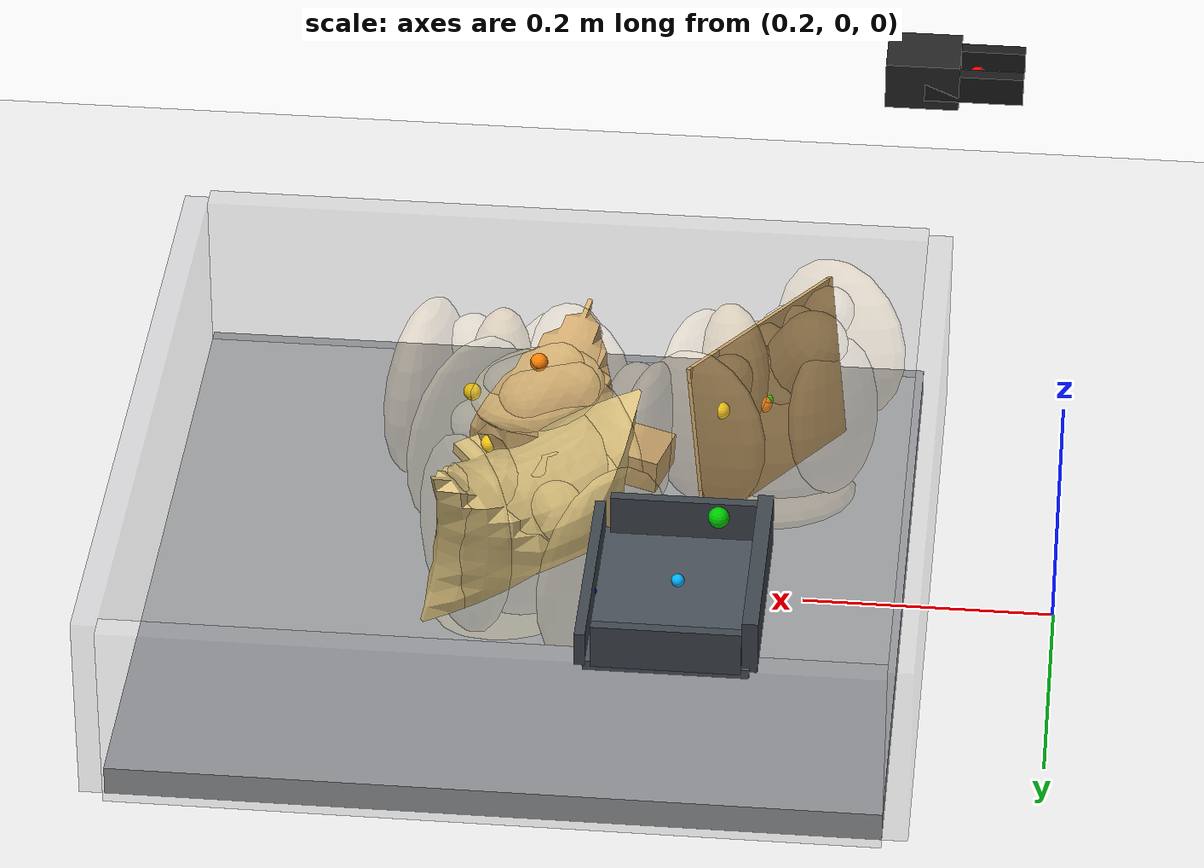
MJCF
<mujoco model="underfilled_slack_seed10">
  <compiler angle="radian" coordinate="local" inertiafromgeom="true" meshdir="D:/Michael/2025/01.Research/01.Parceldetection/16.Pybullet/bullet3-master (1)/bullet3-master/examples/pybullet/examples/DeformableTest/Sackcodex2/object"/>
  <option timestep="0.002" gravity="0 0 -9.81" integrator="implicitfast" iterations="100" tolerance="1e-8"/>
  <size memory="768M" nconmax="12000"/>

  <visual>
    <global azimuth="128" elevation="-20" offwidth="1280" offheight="720"/>
    <headlight ambient="0.34 0.34 0.34" diffuse="0.78 0.78 0.78" specular="0.15 0.15 0.15"/>
    <rgba haze="0.11 0.13 0.18 1"/>
  </visual>

  <default>
    <geom condim="4" friction="1.15 0.03 0.01" margin="0.003" solimp="0.93 0.98 0.003" solref="0.012 1"/>
    <joint damping="1.2" armature="0.002"/>
    <position kp="2500" forcelimited="true" forcerange="-420 420"/>
    <motor ctrllimited="true"/>
  </default>

  <asset>
    <mesh name="sack_0_visual_mesh" file="sack10.obj" scale="0.0687 0.0687 0.0685"/>
    <mesh name="sack_1_visual_mesh" file="sack9.obj" scale="0.0726 0.0726 0.0787"/>
    <mesh name="sack_2_visual_mesh" file="sack2.obj" scale="0.0679 0.0679 0.0690"/>
  </asset>

  <worldbody>
    <light name="key" pos="0.85 0.15 1.8" dir="-0.2 -0.1 -1" directional="true"/>
    <geom name="floor" type="plane" size="2 2 0.1" rgba="0.93 0.93 0.93 1"/>
    <geom name="work_pad" type="box" pos="0.62 0 0.012" size="0.30 0.30 0.012" rgba="0.60 0.61 0.62 1" friction="1.4 0.05 0.01"/>
    <geom name="corral_front" type="box" pos="0.93 0.00 0.08" size="0.010 0.30 0.08" rgba="0.55 0.55 0.58 0.22" friction="1.0 0.03 0.01"/>
    <geom name="corral_back" type="box" pos="0.31 0.00 0.08" size="0.010 0.30 0.08" rgba="0.55 0.55 0.58 0.18" friction="1.0 0.03 0.01"/>
    <geom name="corral_left" type="box" pos="0.62 0.30 0.08" size="0.30 0.010 0.08" rgba="0.55 0.55 0.58 0.14" friction="1.0 0.03 0.01"/>
    <geom name="corral_right" type="box" pos="0.62 -0.30 0.08" size="0.30 0.010 0.08" rgba="0.55 0.55 0.58 0.14" friction="1.0 0.03 0.01"/>
    <camera name="overview" pos="1.22 0.00 0.92" xyaxes="0 1 0 -0.46 0 0.88"/>

    <body name="gripper_mocap" mocap="true" pos="0.36 -0.33 0.30" quat="0.707107 0 -0.707107 0"/>
    <body name="scoop_mocap" mocap="true" pos="0.42 0.28 0.20" quat="1 0 0 0"/>

    <body name="gripper_ctrl_base" pos="0.36 -0.33 0.30">
      <inertial pos="0 0 0" mass="0.001" diaginertia="1e-6 1e-6 1e-6"/>
      <joint name="gripper_ctrl_x" type="slide" axis="1 0 0" limited="true" range="0.20 1.00"/>
      <body name="gripper_ctrl_y_body">
        <inertial pos="0 0 0" mass="0.001" diaginertia="1e-6 1e-6 1e-6"/>
        <joint name="gripper_ctrl_y" type="slide" axis="0 1 0" limited="true" range="-0.60 0.60"/>
        <body name="gripper_ctrl_z_body">
          <inertial pos="0 0 0" mass="0.001" diaginertia="1e-6 1e-6 1e-6"/>
          <joint name="gripper_ctrl_z" type="slide" axis="0 0 1" limited="true" range="0.04 0.70"/>
          <body name="gripper_ctrl_yaw_body">
            <inertial pos="0 0 0" mass="0.001" diaginertia="1e-6 1e-6 1e-6"/>
            <joint name="gripper_ctrl_yaw" type="hinge" axis="0 0 1" limited="true" range="-3.1416 3.1416"/>
            <body name="gripper_ctrl_pitch_body">
              <inertial pos="0 0 0" mass="0.001" diaginertia="1e-6 1e-6 1e-6"/>
              <joint name="gripper_ctrl_pitch" type="hinge" axis="0 1 0" limited="true" range="-3.1416 3.1416"/>
              <body name="gripper_ctrl_roll_body">
                <inertial pos="0 0 0" mass="0.001" diaginertia="1e-6 1e-6 1e-6"/>
                <joint name="gripper_ctrl_roll" type="hinge" axis="1 0 0" limited="true" range="-3.1416 3.1416"/>
              </body>
            </body>
          </body>
        </body>
      </body>
    </body>

    <body name="scoop_ctrl_base" pos="0.42 0.28 0.20">
      <inertial pos="0 0 0" mass="0.001" diaginertia="1e-6 1e-6 1e-6"/>
      <joint name="scoop_ctrl_x" type="slide" axis="1 0 0" limited="true" range="0.20 1.00"/>
      <body name="scoop_ctrl_y_body">
        <inertial pos="0 0 0" mass="0.001" diaginertia="1e-6 1e-6 1e-6"/>
        <joint name="scoop_ctrl_y" type="slide" axis="0 1 0" limited="true" range="-0.60 0.60"/>
        <body name="scoop_ctrl_z_body">
          <inertial pos="0 0 0" mass="0.001" diaginertia="1e-6 1e-6 1e-6"/>
          <joint name="scoop_ctrl_z" type="slide" axis="0 0 1" limited="true" range="0.04 0.70"/>
          <body name="scoop_ctrl_yaw_body">
            <inertial pos="0 0 0" mass="0.001" diaginertia="1e-6 1e-6 1e-6"/>
            <joint name="scoop_ctrl_yaw" type="hinge" axis="0 0 1" limited="true" range="-3.1416 3.1416"/>
            <body name="scoop_ctrl_pitch_body">
              <inertial pos="0 0 0" mass="0.001" diaginertia="1e-6 1e-6 1e-6"/>
              <joint name="scoop_ctrl_pitch" type="hinge" axis="0 1 0" limited="true" range="-3.1416 3.1416"/>
              <body name="scoop_ctrl_roll_body">
                <inertial pos="0 0 0" mass="0.001" diaginertia="1e-6 1e-6 1e-6"/>
                <joint name="scoop_ctrl_roll" type="hinge" axis="1 0 0" limited="true" range="-3.1416 3.1416"/>
              </body>
            </body>
          </body>
        </body>
      </body>
    </body>

    <body name="gripper_tool" pos="0.36 -0.33 0.30" quat="0.707107 0 -0.707107 0">
      <freejoint name="gripper_tool_free"/>
      <inertial pos="0 0 0.04" mass="0.08" diaginertia="0.0002 0.0002 0.0002"/>
      <geom name="gripper_palm" type="box" pos="0 0 0.030" size="0.020 0.026 0.030" rgba="0.14 0.14 0.14 1"/>
      <body name="left_finger_body" pos="0 0 0.072">
        <joint name="left_finger_slide" type="slide" axis="0 1 0" limited="true" range="0.010 0.040" damping="12"/>
        <geom name="left_finger_geom" type="box" pos="0 0.020 0" size="0.012 0.006 0.040" rgba="0.10 0.10 0.10 1" friction="2.2 0.05 0.01"/>
      </body>
      <body name="right_finger_body" pos="0 0 0.072">
        <joint name="right_finger_slide" type="slide" axis="0 -1 0" limited="true" range="0.010 0.040" damping="12"/>
        <geom name="right_finger_geom" type="box" pos="0 -0.020 0" size="0.012 0.006 0.040" rgba="0.10 0.10 0.10 1" friction="2.2 0.05 0.01"/>
      </body>
      <site name="gripper_pinch_site" pos="0 0 0.074" size="0.006" rgba="1 0 0 1"/>
    </body>

    <body name="scoop_tool" pos="0.42 0.28 0.20" quat="1 0 0 0">
      <freejoint name="scoop_tool_free"/>
      <inertial pos="0 0 0.02" mass="0.10" diaginertia="0.0003 0.0003 0.0003"/>
      <geom name="scoop_plate" type="box" pos="0.062 0 0" size="0.062 0.085 0.004" rgba="0.28 0.31 0.35 1" friction="1.7 0.05 0.01"/>
      <geom name="scoop_lip" type="box" pos="0.126 0 0.014" size="0.004 0.085 0.014" rgba="0.24 0.27 0.30 1" friction="1.7 0.05 0.01"/>
      <geom name="scoop_left_rail" type="box" pos="0.062 0.082 0.018" size="0.056 0.004 0.018" rgba="0.24 0.27 0.30 1"/>
      <geom name="scoop_right_rail" type="box" pos="0.062 -0.082 0.018" size="0.056 0.004 0.018" rgba="0.24 0.27 0.30 1"/>
      <geom name="scoop_backstop" type="box" pos="0.000 0 0.022" size="0.006 0.082 0.022" rgba="0.24 0.27 0.30 1"/>
      <site name="scoop_tip_site" pos="0.126 0 0.005" size="0.005" rgba="0 0 1 1"/>
      <site name="scoop_center_site" pos="0.060 0 0.020" size="0.005" rgba="0 0.7 1 1"/>
      <site name="score_overlay_site" pos="0.030 0 0.080" size="0.008" rgba="0 1 0 0.8"/>
    </body>

    <body name="sack_0" pos="0.6150 -0.0476 0.1213" euler="-0.0551 -0.0593 -1.8466">
      <freejoint name="sack_0_free"/>

      <geom name="sack_0_visual" type="mesh" mesh="sack_0_visual_mesh" rgba="0.820 0.670 0.440 0.92" contype="0" conaffinity="0"/>
      <site name="sack_0_center_site" pos="0 0 0.000" size="0.006" rgba="0 1 0 1"/>
      <site name="sack_0_top_site" pos="-0.0005 0.0057 -0.0005" size="0.007" rgba="1 0.5 0 1"/>
      <site name="sack_0_side_site" pos="-0.0013 0.0613 0.018" size="0.007" rgba="1 0.8 0 1"/>

      <geom name="sack_0_core_geom" type="ellipsoid" pos="0 0 0.0054" size="0.0443 0.0348 0.0616" mass="0.6942" rgba="0.820 0.670 0.440 0.12" friction="1.0 0.03 0.01"/>
      <geom name="sack_0_core_front" type="capsule" fromto="-0.0253 0 -0.0180 0.0487 0 0.0580" size="0.0276" mass="0.1653" rgba="0.820 0.670 0.440 0.10"/>
      <geom name="sack_0_core_left" type="capsule" fromto="-0.016 0.0408 -0.012 0.020 0.0702 0.054" size="0.0203" mass="0.2975" rgba="0.820 0.670 0.440 0.10"/>
      <geom name="sack_0_core_right" type="capsule" fromto="-0.016 -0.0408 -0.012 0.020 -0.0702 0.054" size="0.0182" mass="0.2975" rgba="0.820 0.670 0.440 0.10"/>

      <!-- 자루의 외형은 둥근 shell lobe로 보이게 하고, contact proxy는 반투명하게 숨긴다. -->
      <geom name="sack_0_shell_main_visual" type="ellipsoid" pos="-0.0007 -0.0005 -0.0318" size="0.0674 0.0538 0.0866" rgba="0.820 0.670 0.440 0.16" contype="0" conaffinity="0"/>
      <geom name="sack_0_shell_left_visual" type="ellipsoid" pos="0.0040 0.0392 0.0020" size="0.0458 0.0299 0.0710" rgba="0.820 0.670 0.440 0.14" contype="0" conaffinity="0"/>
      <geom name="sack_0_shell_right_visual" type="ellipsoid" pos="0.0040 -0.0238 0.0000" size="0.0431 0.0203 0.0693" rgba="0.820 0.670 0.440 0.12" contype="0" conaffinity="0"/>
      <geom name="sack_0_top_left_crown_visual" type="capsule" fromto="-0.0210 0.0121 -0.0430 0.0210 0.0061 -0.0390" size="0.0204" rgba="0.820 0.670 0.440 0.14" contype="0" conaffinity="0"/>
      <geom name="sack_0_top_right_crown_visual" type="capsule" fromto="-0.0210 -0.0061 -0.0390 0.0210 -0.0121 -0.0430" size="0.0204" rgba="0.820 0.670 0.440 0.14" contype="0" conaffinity="0"/>

      <body name="sack_0_bottom_support_proxy_body" pos="-0.0002 0.0057 -0.0855">
        <joint name="sack_0_bottom_x" type="slide" axis="1 0 0" limited="true" range="-0.012 0.012" damping="18" stiffness="417.7"/>
        <joint name="sack_0_bottom_y" type="slide" axis="0 1 0" limited="true" range="-0.012 0.012" damping="18" stiffness="417.7"/>
        <joint name="sack_0_bottom_z" type="slide" axis="0 0 1" limited="true" range="-0.008 0.020" damping="24" stiffness="514.9"/>
        <geom name="sack_0_bottom_support_proxy" type="ellipsoid" size="0.0686 0.0537 0.0154" mass="0.1322" rgba="0.820 0.670 0.440 0.10" friction="1.55 0.05 0.01"/>
        <geom name="sack_0_bottom_deform_visual" type="ellipsoid" size="0.0731 0.0597 0.0200" rgba="0.820 0.670 0.440 0.22" contype="0" conaffinity="0"/>
      </body>

      <body name="sack_0_top_grasp_proxy_body" pos="-0.0013 0.0057 -0.0285">
        <joint name="sack_0_top_x" type="slide" axis="1 0 0" limited="true" range="-0.018 0.018" damping="12" stiffness="160.2"/>
        <joint name="sack_0_top_y" type="slide" axis="0 1 0" limited="true" range="-0.018 0.018" damping="12" stiffness="160.2"/>
        <joint name="sack_0_top_z" type="slide" axis="0 0 1" limited="true" range="-0.040 0.010" damping="14" stiffness="115.9"/>
        <geom name="sack_0_top_grasp_proxy" type="ellipsoid" size="0.0526 0.0337 0.0337" mass="0.0992" rgba="0.820 0.670 0.440 0.10" friction="2.2 0.05 0.01"/>
        <geom name="sack_0_top_deform_visual" type="ellipsoid" size="0.0547 0.0364 0.0425" rgba="0.820 0.670 0.440 0.36" contype="0" conaffinity="0"/>
        <geom name="sack_0_top_fold_left_visual" type="capsule" fromto="-0.0252 0.0094 0.000 0.0053 0.0027 0.0245" size="0.0147" rgba="0.820 0.670 0.440 0.26" contype="0" conaffinity="0"/>
        <geom name="sack_0_top_fold_right_visual" type="capsule" fromto="-0.0063 -0.0027 0.0245 0.0252 -0.0094 0.000" size="0.0147" rgba="0.820 0.670 0.440 0.26" contype="0" conaffinity="0"/>
      </body>

      <body name="sack_0_left_side_proxy_body" pos="-0.0002 0.1030 0.010">
        <joint name="sack_0_left_side_slide" type="slide" axis="0 -1 0" limited="true" range="-0.028 0.016" damping="16" stiffness="199.7"/>
        <geom name="sack_0_left_side_proxy" type="ellipsoid" size="0.0586 0.0233 0.0775" mass="0.0992" rgba="0.820 0.670 0.440 0.08" friction="1.25 0.04 0.01"/>
        <geom name="sack_0_left_side_deform_visual" type="ellipsoid" size="0.0603 0.0252 0.0790" rgba="0.820 0.670 0.440 0.24" contype="0" conaffinity="0"/>
      </body>

      <body name="sack_0_right_side_proxy_body" pos="-0.0002 -0.0875 0.010">
        <joint name="sack_0_right_side_slide" type="slide" axis="0 1 0" limited="true" range="-0.028 0.016" damping="16" stiffness="185.4"/>
        <geom name="sack_0_right_side_proxy" type="ellipsoid" size="0.0562 0.0182 0.0759" mass="0.0992" rgba="0.820 0.670 0.440 0.08" friction="1.25 0.04 0.01"/>
        <geom name="sack_0_right_side_deform_visual" type="ellipsoid" size="0.0580 0.0201 0.0775" rgba="0.820 0.670 0.440 0.24" contype="0" conaffinity="0"/>
      </body>

      <body name="sack_0_front_proxy_body" pos="0.0613 -0.0001 0.000">
        <joint name="sack_0_front_slide" type="slide" axis="-1 0 0" limited="true" range="-0.022 0.012" damping="15" stiffness="198.8"/>
        <geom name="sack_0_front_support_proxy" type="ellipsoid" size="0.0216 0.0517 0.0735" mass="0.0826" rgba="0.820 0.670 0.440 0.08" friction="1.20 0.04 0.01"/>
        <geom name="sack_0_front_deform_visual" type="ellipsoid" size="0.0220 0.0528 0.0749" rgba="0.820 0.670 0.440 0.20" contype="0" conaffinity="0"/>
      </body>

      <body name="sack_0_back_proxy_body" pos="-0.0631 -0.0001 0.000">
        <joint name="sack_0_back_slide" type="slide" axis="1 0 0" limited="true" range="-0.022 0.012" damping="15" stiffness="184.5"/>
        <geom name="sack_0_back_support_proxy" type="ellipsoid" size="0.0198 0.0517 0.0735" mass="0.0826" rgba="0.820 0.670 0.440 0.08" friction="1.20 0.04 0.01"/>
        <geom name="sack_0_back_deform_visual" type="ellipsoid" size="0.0207 0.0528 0.0749" rgba="0.820 0.670 0.440 0.20" contype="0" conaffinity="0"/>
      </body>

      <body name="sack_0_shape_proxy_body" pos="-0.0008 0.0388 0.0476">
        <joint name="sack_0_bulge_y" type="slide" axis="0 1 0" limited="true" range="-0.020 0.020" damping="8" stiffness="128.2"/>
        <joint name="sack_0_bulge_z" type="slide" axis="0 0 1" limited="true" range="-0.014 0.028" damping="8" stiffness="121.2"/>
        <geom name="sack_0_shape_proxy" type="ellipsoid" size="0.0243 0.0206 0.0497" mass="0.0661" rgba="0.820 0.670 0.440 0.10"/>
        <geom name="sack_0_shape_deform_visual" type="ellipsoid" size="0.0284 0.0247 0.0585" rgba="0.820 0.670 0.440 0.32" contype="0" conaffinity="0"/>
      </body>
    </body>

    <body name="sack_1" pos="0.6128 0.0635 0.1244" euler="-0.1053 -0.0777 0.7121">
      <freejoint name="sack_1_free"/>

      <geom name="sack_1_visual" type="mesh" mesh="sack_1_visual_mesh" rgba="0.840 0.740 0.480 0.92" contype="0" conaffinity="0"/>
      <site name="sack_1_center_site" pos="0 0 0.000" size="0.006" rgba="0 1 0 1"/>
      <site name="sack_1_top_site" pos="-0.0007 -0.0065 0.1447" size="0.007" rgba="1 0.5 0 1"/>
      <site name="sack_1_side_site" pos="-0.0017 -0.0620 0.018" size="0.007" rgba="1 0.8 0 1"/>

      <geom name="sack_1_core_geom" type="ellipsoid" pos="0 0 0.0059" size="0.0515 0.0435 0.0890" mass="1.0844" rgba="0.840 0.740 0.480 0.12" friction="1.0 0.03 0.01"/>
      <geom name="sack_1_core_front" type="capsule" fromto="-0.0257 0 -0.0180 0.0483 0 0.0580" size="0.0304" mass="0.2582" rgba="0.840 0.740 0.480 0.10"/>
      <geom name="sack_1_core_left" type="capsule" fromto="-0.016 0.0351 -0.012 0.020 0.0570 0.054" size="0.0201" mass="0.4648" rgba="0.840 0.740 0.480 0.10"/>
      <geom name="sack_1_core_right" type="capsule" fromto="-0.016 -0.0351 -0.012 0.020 -0.0570 0.054" size="0.0181" mass="0.4648" rgba="0.840 0.740 0.480 0.10"/>

      <!-- 자루의 외형은 둥근 shell lobe로 보이게 하고, contact proxy는 반투명하게 숨긴다. -->
      <geom name="sack_1_shell_main_visual" type="ellipsoid" pos="-0.0009 -0.0009 -0.0019" size="0.0685 0.0579 0.1025" rgba="0.840 0.740 0.480 0.16" contype="0" conaffinity="0"/>
      <geom name="sack_1_shell_left_visual" type="ellipsoid" pos="0.0040 0.0253 0.0020" size="0.0466 0.0208 0.0841" rgba="0.840 0.740 0.480 0.14" contype="0" conaffinity="0"/>
      <geom name="sack_1_shell_right_visual" type="ellipsoid" pos="0.0040 -0.0188 0.0000" size="0.0438 0.0162 0.0820" rgba="0.840 0.740 0.480 0.12" contype="0" conaffinity="0"/>
      <geom name="sack_1_top_left_crown_visual" type="capsule" fromto="-0.0218 0.0142 0.1257 0.0218 0.0071 0.1297" size="0.0196" rgba="0.840 0.740 0.480 0.14" contype="0" conaffinity="0"/>
      <geom name="sack_1_top_right_crown_visual" type="capsule" fromto="-0.0218 -0.0071 0.1297 0.0218 -0.0142 0.1257" size="0.0196" rgba="0.840 0.740 0.480 0.14" contype="0" conaffinity="0"/>

      <body name="sack_1_bottom_support_proxy_body" pos="-0.0003 -0.0060 -0.1050">
        <joint name="sack_1_bottom_x" type="slide" axis="1 0 0" limited="true" range="-0.012 0.012" damping="18" stiffness="502.8"/>
        <joint name="sack_1_bottom_y" type="slide" axis="0 1 0" limited="true" range="-0.012 0.012" damping="18" stiffness="502.8"/>
        <joint name="sack_1_bottom_z" type="slide" axis="0 0 1" limited="true" range="-0.008 0.020" damping="24" stiffness="618.9"/>
        <geom name="sack_1_bottom_support_proxy" type="ellipsoid" size="0.0703 0.0594 0.0126" mass="0.2066" rgba="0.840 0.740 0.480 0.10" friction="1.55 0.05 0.01"/>
        <geom name="sack_1_bottom_deform_visual" type="ellipsoid" size="0.0749 0.0654 0.0163" rgba="0.840 0.740 0.480 0.22" contype="0" conaffinity="0"/>
      </body>

      <body name="sack_1_top_grasp_proxy_body" pos="-0.0017 -0.0066 0.1167">
        <joint name="sack_1_top_x" type="slide" axis="1 0 0" limited="true" range="-0.018 0.018" damping="12" stiffness="193.3"/>
        <joint name="sack_1_top_y" type="slide" axis="0 1 0" limited="true" range="-0.018 0.018" damping="12" stiffness="193.3"/>
        <joint name="sack_1_top_z" type="slide" axis="0 0 1" limited="true" range="-0.040 0.010" damping="14" stiffness="144.3"/>
        <geom name="sack_1_top_grasp_proxy" type="ellipsoid" size="0.0544 0.0394 0.0145" mass="0.1549" rgba="0.840 0.740 0.480 0.10" friction="2.2 0.05 0.01"/>
        <geom name="sack_1_top_deform_visual" type="ellipsoid" size="0.0566 0.0425 0.0190" rgba="0.840 0.740 0.480 0.36" contype="0" conaffinity="0"/>
        <geom name="sack_1_top_fold_left_visual" type="capsule" fromto="-0.0261 0.0110 0.000 0.0054 0.0032 0.0117" size="0.0141" rgba="0.840 0.740 0.480 0.26" contype="0" conaffinity="0"/>
        <geom name="sack_1_top_fold_right_visual" type="capsule" fromto="-0.0065 -0.0032 0.0117 0.0261 -0.0110 0.000" size="0.0141" rgba="0.840 0.740 0.480 0.26" contype="0" conaffinity="0"/>
      </body>

      <body name="sack_1_left_side_proxy_body" pos="-0.0003 0.0946 0.010">
        <joint name="sack_1_left_side_slide" type="slide" axis="0 -1 0" limited="true" range="-0.028 0.016" damping="16" stiffness="258.1"/>
        <geom name="sack_1_left_side_proxy" type="ellipsoid" size="0.0604 0.0160 0.0970" mass="0.1549" rgba="0.840 0.740 0.480 0.08" friction="1.25 0.04 0.01"/>
        <geom name="sack_1_left_side_deform_visual" type="ellipsoid" size="0.0622 0.0172 0.0990" rgba="0.840 0.740 0.480 0.24" contype="0" conaffinity="0"/>
      </body>

      <body name="sack_1_right_side_proxy_body" pos="-0.0003 -0.0882 0.010">
        <joint name="sack_1_right_side_slide" type="slide" axis="0 1 0" limited="true" range="-0.028 0.016" damping="16" stiffness="239.1"/>
        <geom name="sack_1_right_side_proxy" type="ellipsoid" size="0.0580 0.0124 0.0951" mass="0.1549" rgba="0.840 0.740 0.480 0.08" friction="1.25 0.04 0.01"/>
        <geom name="sack_1_right_side_deform_visual" type="ellipsoid" size="0.0598 0.0137 0.0970" rgba="0.840 0.740 0.480 0.24" contype="0" conaffinity="0"/>
      </body>

      <body name="sack_1_front_proxy_body" pos="0.0627 -0.0003 0.000">
        <joint name="sack_1_front_slide" type="slide" axis="-1 0 0" limited="true" range="-0.022 0.012" damping="15" stiffness="241.4"/>
        <geom name="sack_1_front_support_proxy" type="ellipsoid" size="0.0166 0.0574 0.0930" mass="0.1291" rgba="0.840 0.740 0.480 0.08" friction="1.20 0.04 0.01"/>
        <geom name="sack_1_front_deform_visual" type="ellipsoid" size="0.0170 0.0585 0.0949" rgba="0.840 0.740 0.480 0.20" contype="0" conaffinity="0"/>
      </body>

      <body name="sack_1_back_proxy_body" pos="-0.0651 -0.0003 0.000">
        <joint name="sack_1_back_slide" type="slide" axis="1 0 0" limited="true" range="-0.022 0.012" damping="15" stiffness="222.3"/>
        <geom name="sack_1_back_support_proxy" type="ellipsoid" size="0.0153 0.0574 0.0930" mass="0.1291" rgba="0.840 0.740 0.480 0.08" friction="1.20 0.04 0.01"/>
        <geom name="sack_1_back_deform_visual" type="ellipsoid" size="0.0160 0.0585 0.0949" rgba="0.840 0.740 0.480 0.20" contype="0" conaffinity="0"/>
      </body>

      <body name="sack_1_shape_proxy_body" pos="-0.0010 -0.0235 0.0230">
        <joint name="sack_1_bulge_y" type="slide" axis="0 1 0" limited="true" range="-0.020 0.020" damping="8" stiffness="71.5"/>
        <joint name="sack_1_bulge_z" type="slide" axis="0 0 1" limited="true" range="-0.014 0.028" damping="8" stiffness="78.6"/>
        <geom name="sack_1_shape_proxy" type="ellipsoid" size="0.0241 0.0202 0.0305" mass="0.1033" rgba="0.840 0.740 0.480 0.10"/>
        <geom name="sack_1_shape_deform_visual" type="ellipsoid" size="0.0281 0.0242 0.0350" rgba="0.840 0.740 0.480 0.32" contype="0" conaffinity="0"/>
      </body>
    </body>

    <body name="sack_2" pos="0.4398 -0.1005 0.1240" euler="0.1734 0.1165 2.5947">
      <freejoint name="sack_2_free"/>

      <geom name="sack_2_visual" type="mesh" mesh="sack_2_visual_mesh" rgba="0.820 0.670 0.440 0.92" contype="0" conaffinity="0"/>
      <site name="sack_2_center_site" pos="0 0 0.000" size="0.006" rgba="0 1 0 1"/>
      <site name="sack_2_top_site" pos="0.0010 -0.0051 -0.0011" size="0.007" rgba="1 0.5 0 1"/>
      <site name="sack_2_side_site" pos="0.0026 -0.0628 0.018" size="0.007" rgba="1 0.8 0 1"/>

      <geom name="sack_2_core_geom" type="ellipsoid" pos="0 0 0.0054" size="0.0448 0.0355 0.0626" mass="0.7195" rgba="0.820 0.670 0.440 0.12" friction="1.0 0.03 0.01"/>
      <geom name="sack_2_core_front" type="capsule" fromto="-0.0214 0 -0.0180 0.0526 0 0.0580" size="0.0282" mass="0.1713" rgba="0.820 0.670 0.440 0.10"/>
      <geom name="sack_2_core_left" type="capsule" fromto="-0.016 0.0405 -0.012 0.020 0.0694 0.054" size="0.0202" mass="0.3084" rgba="0.820 0.670 0.440 0.10"/>
      <geom name="sack_2_core_right" type="capsule" fromto="-0.016 -0.0405 -0.012 0.020 -0.0694 0.054" size="0.0182" mass="0.3084" rgba="0.820 0.670 0.440 0.10"/>

      <!-- 자루의 외형은 둥근 shell lobe로 보이게 하고, contact proxy는 반투명하게 숨긴다. -->
      <geom name="sack_2_shell_main_visual" type="ellipsoid" pos="0.0013 0.0015 -0.0305" size="0.0679 0.0554 0.0786" rgba="0.820 0.670 0.440 0.16" contype="0" conaffinity="0"/>
      <geom name="sack_2_shell_left_visual" type="ellipsoid" pos="0.0040 0.0423 0.0020" size="0.0462 0.0294 0.0645" rgba="0.820 0.670 0.440 0.14" contype="0" conaffinity="0"/>
      <geom name="sack_2_shell_right_visual" type="ellipsoid" pos="0.0040 -0.0196 0.0000" size="0.0435 0.0201 0.0629" rgba="0.820 0.670 0.440 0.12" contype="0" conaffinity="0"/>
      <geom name="sack_2_top_left_crown_visual" type="capsule" fromto="-0.0213 0.0128 -0.0426 0.0213 0.0064 -0.0386" size="0.0204" rgba="0.820 0.670 0.440 0.14" contype="0" conaffinity="0"/>
      <geom name="sack_2_top_right_crown_visual" type="capsule" fromto="-0.0213 -0.0064 -0.0386 0.0213 -0.0128 -0.0426" size="0.0204" rgba="0.820 0.670 0.440 0.14" contype="0" conaffinity="0"/>

      <body name="sack_2_bottom_support_proxy_body" pos="0.0005 -0.0068 -0.0762">
        <joint name="sack_2_bottom_x" type="slide" axis="1 0 0" limited="true" range="-0.012 0.012" damping="18" stiffness="435.9"/>
        <joint name="sack_2_bottom_y" type="slide" axis="0 1 0" limited="true" range="-0.012 0.012" damping="18" stiffness="435.9"/>
        <joint name="sack_2_bottom_z" type="slide" axis="0 0 1" limited="true" range="-0.008 0.020" damping="24" stiffness="537.2"/>
        <geom name="sack_2_bottom_support_proxy" type="ellipsoid" size="0.0692 0.0555 0.0148" mass="0.1370" rgba="0.820 0.670 0.440 0.10" friction="1.55 0.05 0.01"/>
        <geom name="sack_2_bottom_deform_visual" type="ellipsoid" size="0.0737 0.0615 0.0192" rgba="0.820 0.670 0.440 0.22" contype="0" conaffinity="0"/>
      </body>

      <body name="sack_2_top_grasp_proxy_body" pos="0.0026 -0.0050 -0.0291">
        <joint name="sack_2_top_x" type="slide" axis="1 0 0" limited="true" range="-0.018 0.018" damping="12" stiffness="167.3"/>
        <joint name="sack_2_top_y" type="slide" axis="0 1 0" limited="true" range="-0.018 0.018" damping="12" stiffness="167.3"/>
        <joint name="sack_2_top_z" type="slide" axis="0 0 1" limited="true" range="-0.040 0.010" damping="14" stiffness="122.0"/>
        <geom name="sack_2_top_grasp_proxy" type="ellipsoid" size="0.0532 0.0355 0.0329" mass="0.1028" rgba="0.820 0.670 0.440 0.10" friction="2.2 0.05 0.01"/>
        <geom name="sack_2_top_deform_visual" type="ellipsoid" size="0.0553 0.0384 0.0415" rgba="0.820 0.670 0.440 0.36" contype="0" conaffinity="0"/>
        <geom name="sack_2_top_fold_left_visual" type="capsule" fromto="-0.0255 0.0099 0.000 0.0053 0.0028 0.0239" size="0.0147" rgba="0.820 0.670 0.440 0.26" contype="0" conaffinity="0"/>
        <geom name="sack_2_top_fold_right_visual" type="capsule" fromto="-0.0064 -0.0028 0.0239 0.0255 -0.0099 0.000" size="0.0147" rgba="0.820 0.670 0.440 0.26" contype="0" conaffinity="0"/>
      </body>

      <body name="sack_2_left_side_proxy_body" pos="0.0004 0.1079 0.010">
        <joint name="sack_2_left_side_slide" type="slide" axis="0 -1 0" limited="true" range="-0.028 0.016" damping="16" stiffness="211.9"/>
        <geom name="sack_2_left_side_proxy" type="ellipsoid" size="0.0592 0.0229 0.0682" mass="0.1028" rgba="0.820 0.670 0.440 0.08" friction="1.25 0.04 0.01"/>
        <geom name="sack_2_left_side_deform_visual" type="ellipsoid" size="0.0610 0.0248 0.0695" rgba="0.820 0.670 0.440 0.24" contype="0" conaffinity="0"/>
      </body>

      <body name="sack_2_right_side_proxy_body" pos="0.0004 -0.0851 0.010">
        <joint name="sack_2_right_side_slide" type="slide" axis="0 1 0" limited="true" range="-0.028 0.016" damping="16" stiffness="196.6"/>
        <geom name="sack_2_right_side_proxy" type="ellipsoid" size="0.0568 0.0179 0.0668" mass="0.1028" rgba="0.820 0.670 0.440 0.08" friction="1.25 0.04 0.01"/>
        <geom name="sack_2_right_side_deform_visual" type="ellipsoid" size="0.0586 0.0197 0.0682" rgba="0.820 0.670 0.440 0.24" contype="0" conaffinity="0"/>
      </body>

      <body name="sack_2_front_proxy_body" pos="0.0658 0.0005 0.000">
        <joint name="sack_2_front_slide" type="slide" axis="-1 0 0" limited="true" range="-0.022 0.012" damping="15" stiffness="207.9"/>
        <geom name="sack_2_front_support_proxy" type="ellipsoid" size="0.0213 0.0535 0.0642" mass="0.0857" rgba="0.820 0.670 0.440 0.08" friction="1.20 0.04 0.01"/>
        <geom name="sack_2_front_deform_visual" type="ellipsoid" size="0.0217 0.0546 0.0654" rgba="0.820 0.670 0.440 0.20" contype="0" conaffinity="0"/>
      </body>

      <body name="sack_2_back_proxy_body" pos="-0.0622 0.0005 0.000">
        <joint name="sack_2_back_slide" type="slide" axis="1 0 0" limited="true" range="-0.022 0.012" damping="15" stiffness="192.6"/>
        <geom name="sack_2_back_support_proxy" type="ellipsoid" size="0.0196 0.0535 0.0642" mass="0.0857" rgba="0.820 0.670 0.440 0.08" friction="1.20 0.04 0.01"/>
        <geom name="sack_2_back_deform_visual" type="ellipsoid" size="0.0204 0.0546 0.0654" rgba="0.820 0.670 0.440 0.20" contype="0" conaffinity="0"/>
      </body>

      <body name="sack_2_shape_proxy_body" pos="0.0016 -0.0371 0.0423">
        <joint name="sack_2_bulge_y" type="slide" axis="0 1 0" limited="true" range="-0.020 0.020" damping="8" stiffness="116.1"/>
        <joint name="sack_2_bulge_z" type="slide" axis="0 0 1" limited="true" range="-0.014 0.028" damping="8" stiffness="112.1"/>
        <geom name="sack_2_shape_proxy" type="ellipsoid" size="0.0243 0.0206 0.0489" mass="0.0685" rgba="0.820 0.670 0.440 0.10"/>
        <geom name="sack_2_shape_deform_visual" type="ellipsoid" size="0.0284 0.0247 0.0575" rgba="0.820 0.670 0.440 0.32" contype="0" conaffinity="0"/>
      </body>
    </body>
  </worldbody>

  <equality>
    <weld name="gripper_follow" body1="gripper_mocap" body2="gripper_tool" torquescale="400" solref="0.002 1" solimp="0.99 0.999 0.0001"/>
    <weld name="scoop_follow" body1="scoop_mocap" body2="scoop_tool" torquescale="500" solref="0.002 1" solimp="0.99 0.999 0.0001"/>
  </equality>

  <actuator>
    <position name="gripper_ctrl_x_act" joint="gripper_ctrl_x" ctrlrange="0.20 1.00" kp="3500" forcerange="-300 300"/>
    <position name="gripper_ctrl_y_act" joint="gripper_ctrl_y" ctrlrange="-0.60 0.60" kp="3500" forcerange="-300 300"/>
    <position name="gripper_ctrl_z_act" joint="gripper_ctrl_z" ctrlrange="0.04 0.70" kp="3500" forcerange="-300 300"/>
    <position name="gripper_ctrl_yaw_act" joint="gripper_ctrl_yaw" ctrlrange="-3.1416 3.1416" kp="1800" forcerange="-250 250"/>
    <position name="gripper_ctrl_pitch_act" joint="gripper_ctrl_pitch" ctrlrange="-3.1416 3.1416" kp="1800" forcerange="-250 250"/>
    <position name="gripper_ctrl_roll_act" joint="gripper_ctrl_roll" ctrlrange="-3.1416 3.1416" kp="1800" forcerange="-250 250"/>
    <position name="scoop_ctrl_x_act" joint="scoop_ctrl_x" ctrlrange="0.20 1.00" kp="3500" forcerange="-300 300"/>
    <position name="scoop_ctrl_y_act" joint="scoop_ctrl_y" ctrlrange="-0.60 0.60" kp="3500" forcerange="-300 300"/>
    <position name="scoop_ctrl_z_act" joint="scoop_ctrl_z" ctrlrange="0.04 0.70" kp="3500" forcerange="-300 300"/>
    <position name="scoop_ctrl_yaw_act" joint="scoop_ctrl_yaw" ctrlrange="-3.1416 3.1416" kp="1800" forcerange="-250 250"/>
    <position name="scoop_ctrl_pitch_act" joint="scoop_ctrl_pitch" ctrlrange="-3.1416 3.1416" kp="1800" forcerange="-250 250"/>
    <position name="scoop_ctrl_roll_act" joint="scoop_ctrl_roll" ctrlrange="-3.1416 3.1416" kp="1800" forcerange="-250 250"/>
    <position name="left_finger_act" joint="left_finger_slide" ctrlrange="0.010 0.040" kp="2800" forcerange="-220 220"/>
    <position name="right_finger_act" joint="right_finger_slide" ctrlrange="0.010 0.040" kp="2800" forcerange="-220 220"/>
  </actuator>

  <contact>
    <exclude body1="sack_0_top_grasp_proxy_body" body2="sack_0_left_side_proxy_body"/>
    <exclude body1="sack_0_top_grasp_proxy_body" body2="sack_0_right_side_proxy_body"/>
    <exclude body1="sack_1_top_grasp_proxy_body" body2="sack_1_left_side_proxy_body"/>
    <exclude body1="sack_1_top_grasp_proxy_body" body2="sack_1_right_side_proxy_body"/>
    <exclude body1="sack_2_top_grasp_proxy_body" body2="sack_2_left_side_proxy_body"/>
    <exclude body1="sack_2_top_grasp_proxy_body" body2="sack_2_right_side_proxy_body"/>
  </contact>
</mujoco>
